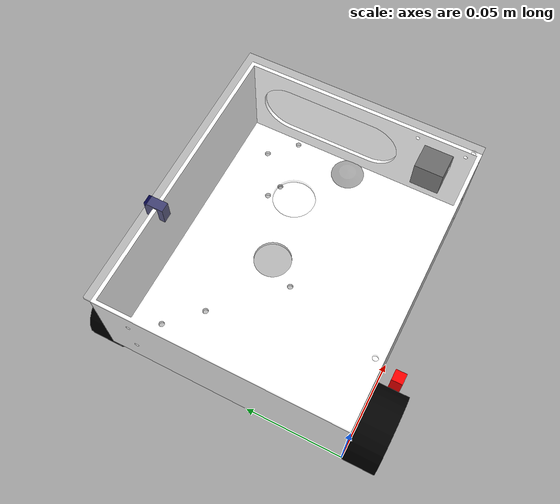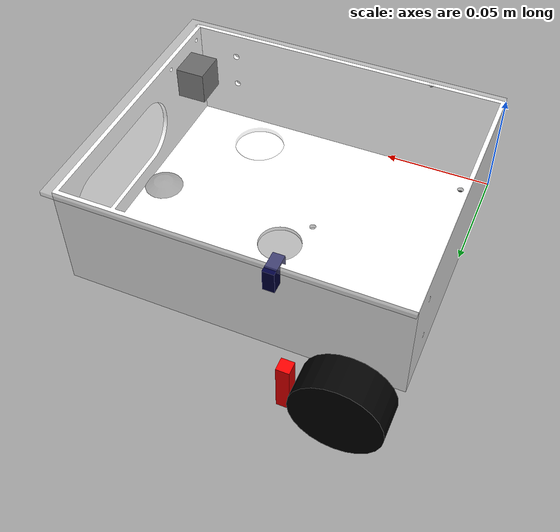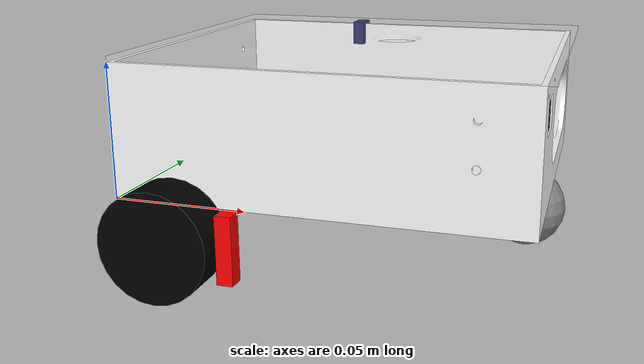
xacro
<?xml version="1.0"?>

<robot xmlns:xacro="http://www.ros.org/wiki/xacro"
       name="robot">

<xacro:property name="base_length" value="0.1500"/>
<xacro:property name="base_width"  value="0.1250"/>
<xacro:property name="base_height" value="0.0508"/>

<xacro:property name="wheel_radius" value="0.0205"/>
<xacro:property name="wheel_width"  value="0.017"/>

<xacro:property name="wheel_x" value="0.0225"/>
<xacro:property name="left_wheel_y" value="0.1335"/>
<xacro:property name="right_wheel_y" value="-0.0085"/>

<link name="base_link">

    <visual>
        <geometry>
            <mesh filename="package://robot_description/meshes/base.stl"
                  scale="0.001 0.001 0.001"/>
        </geometry>

        <material name="white">
            <color rgba="1 1 1 1"/>
        </material>
    </visual>

    <collision>
        <geometry>
            <box size="${base_length} ${base_width} ${base_height}"/>
        </geometry>
    </collision>

    <inertial>
        <mass value="1.0"/>
        <origin xyz="0 0 0"/>
        <inertia
            ixx="0.01"
            ixy="0"
            ixz="0"
            iyy="0.01"
            iyz="0"
            izz="0.01"/>
    </inertial>

</link>

<xacro:macro name="wheel" params="name x y">

    <link name="${name}">

        <visual>
            <geometry>
                <cylinder radius="${wheel_radius}"
                          length="${wheel_width}"/>
            </geometry>

            <origin rpy="1.5708 0 0"/>

            <material name="black">
                <color rgba="0 0 0 1"/>
            </material>
        </visual>

        <!-- Rotation marker -->
        <visual>
            <geometry>
                <box size="0.006 0.006 0.025"/>
            </geometry>

            <origin xyz="${wheel_radius + 0.004} 0 0"
                    rpy="0 0 0"/>

            <material name="${name}_red_marker">
                <color rgba="1 0 0 1"/>
            </material>
        </visual>

        <collision>

            <geometry>
                <cylinder radius="${wheel_radius}"
                          length="${wheel_width}"/>
            </geometry>

            <origin rpy="1.5708 0 0"/>

        </collision>

    </link>

    <joint name="${name}_joint" type="continuous">

        <parent link="base_link"/>
        <child link="${name}"/>

        <origin xyz="${x} ${y} -0.0105"
                rpy="0 0 0"/>

        <axis xyz="0 1 0"/>

    </joint>

</xacro:macro>

<xacro:wheel
    name="left_wheel"
    x="${wheel_x}"
    y="${left_wheel_y}"/>

<xacro:wheel
    name="right_wheel"
    x="${wheel_x}"
    y="${right_wheel_y}"/>

<link name="caster_link">

    <visual>
        <geometry>
            <sphere radius="0.015"/>
        </geometry>

        <material name="gray">
            <color rgba=".5 .5 .5 1"/>
        </material>
    </visual>

    <collision>
        <geometry>
            <sphere radius="0.015"/>
        </geometry>
    </collision>

</link>

<joint name="caster_joint" type="fixed">

    <parent link="base_link"/>
    <child link="caster_link"/>

    <origin xyz="0.140 0.0625 -0.01"
            rpy="0 0 0"/>

</joint>

<link name="imu_link">

    <visual>

        <geometry>
            <box size="0.01 0.01 0.005"/>
        </geometry>

        <material name="light blue">
            <color rgba="0 0 .25 1"/>
        </material>

    </visual>

</link>

<joint name="imu_joint" type="fixed">

    <parent link="base_link"/>
    <child link="imu_link"/>

    <origin xyz="0.055 0.125 0.0459"
            rpy="0 -1.5708 0"/>

</joint>

<link name="camera_link">

    <visual>

        <geometry>
            <box size="0.015 0.015 0.015"/>
        </geometry>

        <material name="green">
            <color rgba=".2 .2 .2 1"/>
        </material>

    </visual>

</link>

<joint name="camera_joint" type="fixed">

    <parent link="base_link"/>
    <child link="camera_link"/>

    <origin xyz="0.142 .02 0.035"
            rpy="0 0 0"/>

</joint>

<link name="base_cover_link">

    <visual>
        <geometry>
            <mesh filename="package://robot_description/meshes/base_cover.stl"
                  scale="0.001 0.001 0.001"/>
        </geometry>

        <material name="white">
            <color rgba="1 1 1 .25"/>
        </material>
    </visual>

</link>

<joint name="base_cover_joint" type="fixed">

    <parent link="base_link"/>
    <child link="base_cover_link"/>

    <origin xyz="0 0 0.050"
            rpy="0 0 0"/>

</joint>

<link name="rplidar_link">
    <visual>
        <geometry>
            <mesh filename="package://robot_description/meshes/rplidar.stl"
                  scale="0.001 0.001 0.001"/>
        </geometry>

        <material name="black">
            <color rgba="0 0 0 .75"/>
        </material>

    </visual>
</link>

<joint name="rplidar_joint" type="fixed">

    <parent link="base_cover_link"/>
    <child link="rplidar_link"/>

    <origin xyz=".12 .07 .002"
            rpy="0 0 0"/>

</joint>

<link name="laser"/>

<joint name="laser_joint" type="fixed">
    <parent link="rplidar_link"/>
    <child link="laser"/>

    <origin xyz="0 0 0"
            rpy="0 0 0"/>
</joint>

</robot>
